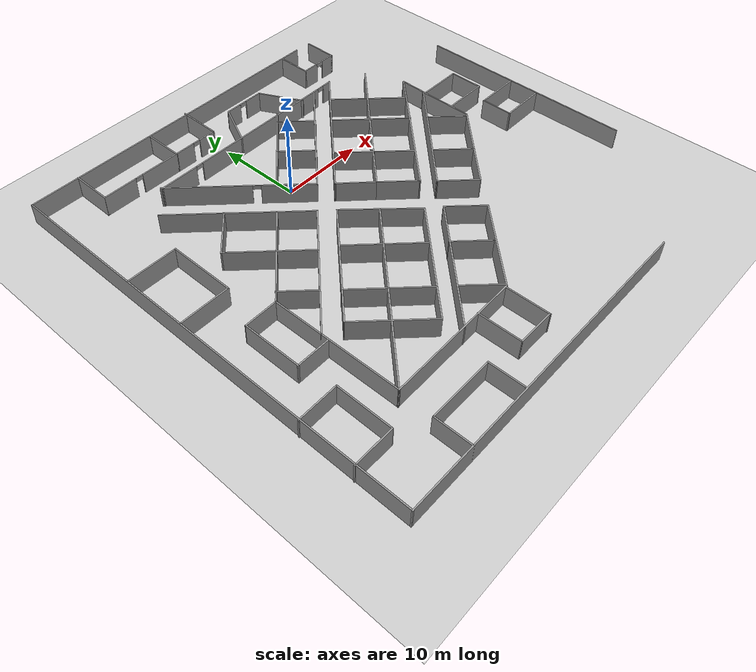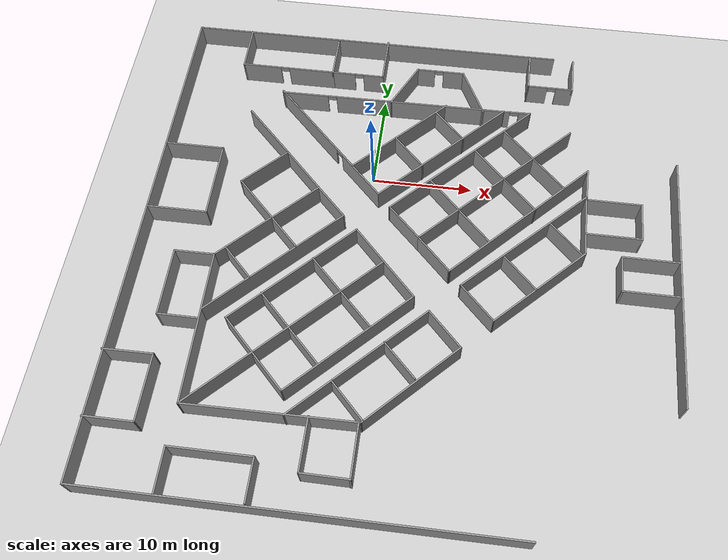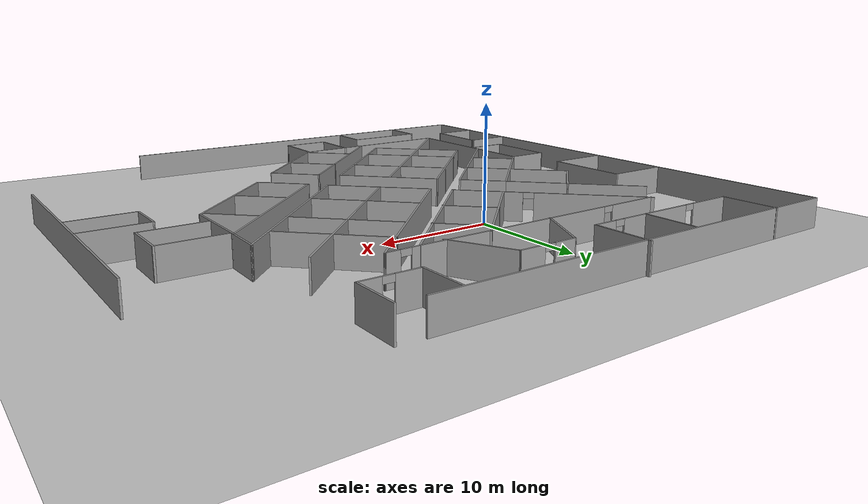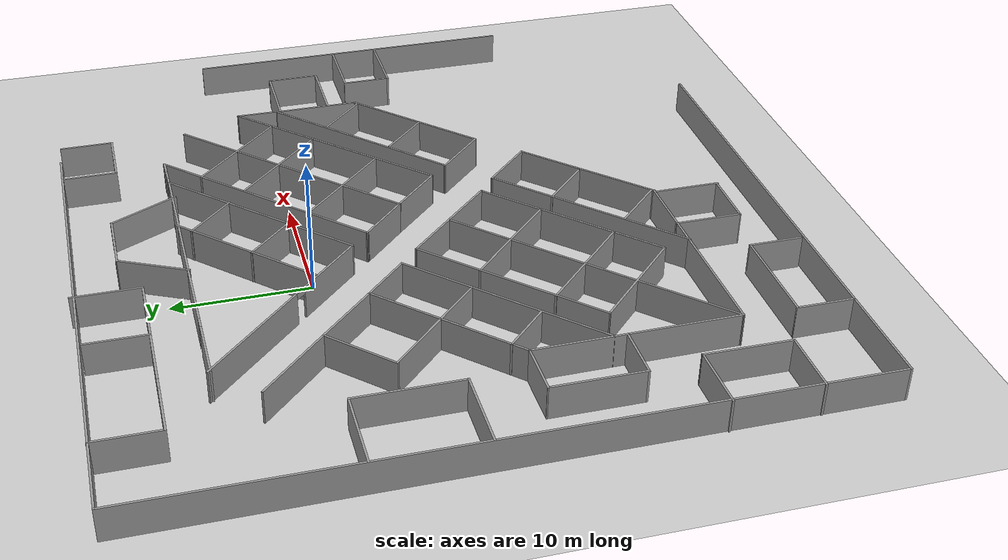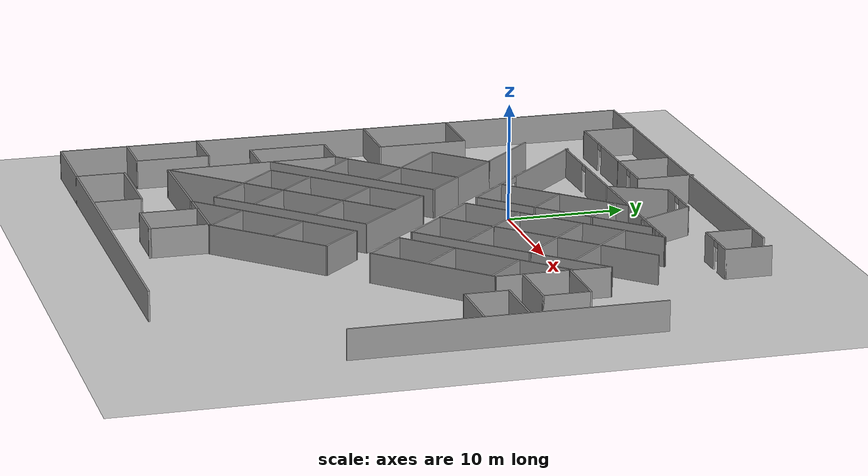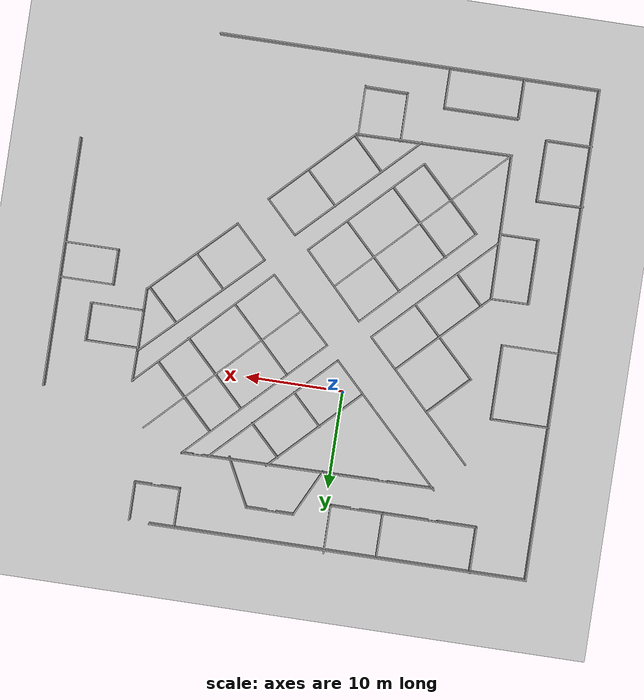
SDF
<sdf version="1.6">
 <world name="default">
  <model name="ground_plane">
   <static>1</static>
   <link name="link">
    <collision name="collision">
     <geometry><plane><normal>0 0 1</normal><size>100 100</size></plane></geometry>
     <surface>
      <contact><collide_bitmask>65535</collide_bitmask></contact>
      <friction><ode><mu>100</mu><mu2>50</mu2></ode></friction>
     </surface>
    </collision>
    <visual name="visual">
     <cast_shadows>0</cast_shadows>
     <geometry><plane><normal>0 0 1</normal><size>100 100</size></plane></geometry>
     <material>
      <script><uri>file://media/materials/scripts/gazebo.material</uri><name>Gazebo/Grey</name></script>
     </material>
    </visual>
   </link>
  </model>
  <model name="Level_1">
   <pose>4.42313 -8.87328 0 0 -0 0</pose>
   <link name="Wall_0">
    <collision name="Wall_0_Collision">
     <geometry><box><size>39 0.15 2.5</size></box></geometry>
     <pose>0 0 1.25 0 -0 0</pose>
    </collision>
    <visual name="Wall_0_Visual">
     <pose>0 0 1.25 0 -0 0</pose>
     <geometry><box><size>39 0.15 2.5</size></box></geometry>
     <material>
      <script><uri>file://media/materials/scripts/gazebo.material</uri><name>Gazebo/Grey</name></script>
      <ambient>1 1 1 1</ambient>
     </material>
     <meta><layer>0</layer></meta>
    </visual>
    <pose>-6.1866 -25.3136 0 0 -0 0</pose>
   </link>
   <link name="Wall_101">
    <collision name="Wall_101_Collision">
     <geometry><box><size>4.75 0.15 2.5</size></box></geometry>
     <pose>0 0 1.25 0 -0 0</pose>
    </collision>
    <visual name="Wall_101_Visual">
     <pose>0 0 1.25 0 -0 0</pose>
     <geometry><box><size>4.75 0.15 2.5</size></box></geometry>
     <material>
      <script><uri>file://media/materials/scripts/gazebo.material</uri><name>Gazebo/Grey</name></script>
      <ambient>1 1 1 1</ambient>
     </material>
     <meta><layer>0</layer></meta>
    </visual>
    <pose>7.03487 -4.82871 0 0 -0 2.35619</pose>
   </link>
   <link name="Wall_102">
    <collision name="Wall_102_Collision">
     <geometry><box><size>16.002 0.15 2.5</size></box></geometry>
     <pose>0 0 1.25 0 -0 0</pose>
    </collision>
    <visual name="Wall_102_Visual">
     <pose>0 0 1.25 0 -0 0</pose>
     <geometry><box><size>16.002 0.15 2.5</size></box></geometry>
     <material>
      <script><uri>file://media/materials/scripts/gazebo.material</uri><name>Gazebo/Grey</name></script>
      <ambient>1 1 1 1</ambient>
     </material>
     <meta><layer>0</layer></meta>
    </visual>
    <pose>11.1007 2.31307 0 0 -0 0.769627</pose>
   </link>
   <link name="Wall_103">
    <collision name="Wall_103_Collision">
     <geometry><box><size>6.5 0.15 2.5</size></box></geometry>
     <pose>0 0 1.25 0 -0 0</pose>
    </collision>
    <visual name="Wall_103_Visual">
     <pose>0 0 1.25 0 -0 0</pose>
     <geometry><box><size>6.5 0.15 2.5</size></box></geometry>
     <material>
      <script><uri>file://media/materials/scripts/gazebo.material</uri><name>Gazebo/Grey</name></script>
      <ambient>1 1 1 1</ambient>
     </material>
     <meta><layer>0</layer></meta>
    </visual>
    <pose>16.7929 4.65351 0 0 -0 -1.5708</pose>
   </link>
   <link name="Wall_104">
    <collision name="Wall_104_Collision">
     <geometry><box><size>11.5107 0.15 2.5</size></box></geometry>
     <pose>0 0 1.25 0 -0 0</pose>
    </collision>
    <visual name="Wall_104_Visual">
     <pose>0 0 1.25 0 -0 0</pose>
     <geometry><box><size>11.5107 0.15 2.5</size></box></geometry>
     <material>
      <script><uri>file://media/materials/scripts/gazebo.material</uri><name>Gazebo/Grey</name></script>
      <ambient>1 1 1 1</ambient>
     </material>
     <meta><layer>0</layer></meta>
    </visual>
    <pose>12.7271 -2.48827 0 0 -0 -2.36853</pose>
   </link>
   <link name="Wall_106">
    <collision name="Wall_106_Collision">
     <geometry><box><size>4.5 0.15 2.5</size></box></geometry>
     <pose>0 0 1.25 0 -0 0</pose>
    </collision>
    <visual name="Wall_106_Visual">
     <pose>0 0 1.25 0 -0 0</pose>
     <geometry><box><size>4.5 0.15 2.5</size></box></geometry>
     <material>
      <script><uri>file://media/materials/scripts/gazebo.material</uri><name>Gazebo/Grey</name></script>
      <ambient>1 1 1 1</ambient>
     </material>
     <meta><layer>0</layer></meta>
    </visual>
    <pose>10.7825 -1.28419 0 0 -0 -0.785398</pose>
   </link>
   <link name="Wall_108">
    <collision name="Wall_108_Collision">
     <geometry><box><size>4.5 0.15 2.5</size></box></geometry>
     <pose>0 0 1.25 0 -0 0</pose>
    </collision>
    <visual name="Wall_108_Visual">
     <pose>0 0 1.25 0 -0 0</pose>
     <geometry><box><size>4.5 0.15 2.5</size></box></geometry>
     <material>
      <script><uri>file://media/materials/scripts/gazebo.material</uri><name>Gazebo/Grey</name></script>
      <ambient>1 1 1 1</ambient>
     </material>
     <meta><layer>0</layer></meta>
    </visual>
    <pose>14.9391 2.87236 0 0 -0 -0.785398</pose>
   </link>
   <link name="Wall_11">
    <collision name="Wall_11_Collision">
     <geometry><box><size>25.5 0.15 2.5</size></box></geometry>
     <pose>0 0 1.25 0 -0 0</pose>
    </collision>
    <visual name="Wall_11_Visual">
     <pose>0 0 1.25 0 -0 0</pose>
     <geometry><box><size>25.5 0.15 2.5</size></box></geometry>
     <material>
      <script><uri>file://media/materials/scripts/gazebo.material</uri><name>Gazebo/Grey</name></script>
      <ambient>1 1 1 1</ambient>
     </material>
     <meta><layer>0</layer></meta>
    </visual>
    <pose>25.7176 -0.00926 0 0 -0 -1.5708</pose>
   </link>
   <link name="Wall_110">
    <collision name="Wall_110_Collision">
     <geometry><box><size>5.5 0.15 2.5</size></box></geometry>
     <pose>0 0 1.25 0 -0 0</pose>
    </collision>
    <visual name="Wall_110_Visual">
     <pose>0 0 1.25 0 -0 0</pose>
     <geometry><box><size>5.5 0.15 2.5</size></box></geometry>
     <material>
      <script><uri>file://media/materials/scripts/gazebo.material</uri><name>Gazebo/Grey</name></script>
      <ambient>1 1 1 1</ambient>
     </material>
     <meta><layer>0</layer></meta>
    </visual>
    <pose>22.9256 -2.04053 0 0 -0 3.14159</pose>
   </link>
   <link name="Wall_111">
    <collision name="Wall_111_Collision">
     <geometry><box><size>3.75 0.15 2.5</size></box></geometry>
     <pose>0 0 1.25 0 -0 0</pose>
    </collision>
    <visual name="Wall_111_Visual">
     <pose>0 0 1.25 0 -0 0</pose>
     <geometry><box><size>3.75 0.15 2.5</size></box></geometry>
     <material>
      <script><uri>file://media/materials/scripts/gazebo.material</uri><name>Gazebo/Grey</name></script>
      <ambient>1 1 1 1</ambient>
     </material>
     <meta><layer>0</layer></meta>
    </visual>
    <pose>20.2506 -0.240529 0 0 -0 1.5708</pose>
   </link>
   <link name="Wall_112">
    <collision name="Wall_112_Collision">
     <geometry><box><size>5.5 0.15 2.5</size></box></geometry>
     <pose>0 0 1.25 0 -0 0</pose>
    </collision>
    <visual name="Wall_112_Visual">
     <pose>0 0 1.25 0 -0 0</pose>
     <geometry><box><size>5.5 0.15 2.5</size></box></geometry>
     <material>
      <script><uri>file://media/materials/scripts/gazebo.material</uri><name>Gazebo/Grey</name></script>
      <ambient>1 1 1 1</ambient>
     </material>
     <meta><layer>0</layer></meta>
    </visual>
    <pose>22.9256 1.55947 0 0 -0 0</pose>
   </link>
   <link name="Wall_114">
    <collision name="Wall_114_Collision">
     <geometry><box><size>5.5 0.15 2.5</size></box></geometry>
     <pose>0 0 1.25 0 -0 0</pose>
    </collision>
    <visual name="Wall_114_Visual">
     <pose>0 0 1.25 0 -0 0</pose>
     <geometry><box><size>5.5 0.15 2.5</size></box></geometry>
     <material>
      <script><uri>file://media/materials/scripts/gazebo.material</uri><name>Gazebo/Grey</name></script>
      <ambient>1 1 1 1</ambient>
     </material>
     <meta><layer>0</layer></meta>
    </visual>
    <pose>19.4933 3.69811 0 0 -0 0</pose>
   </link>
   <link name="Wall_115">
    <collision name="Wall_115_Collision">
     <geometry><box><size>4 0.15 2.5</size></box></geometry>
     <pose>0 0 1.25 0 -0 0</pose>
    </collision>
    <visual name="Wall_115_Visual">
     <pose>0 0 1.25 0 -0 0</pose>
     <geometry><box><size>4 0.15 2.5</size></box></geometry>
     <material>
      <script><uri>file://media/materials/scripts/gazebo.material</uri><name>Gazebo/Grey</name></script>
      <ambient>1 1 1 1</ambient>
     </material>
     <meta><layer>0</layer></meta>
    </visual>
    <pose>22.1683 5.62311 0 0 -0 1.5708</pose>
   </link>
   <link name="Wall_116">
    <collision name="Wall_116_Collision">
     <geometry><box><size>5.5 0.15 2.5</size></box></geometry>
     <pose>0 0 1.25 0 -0 0</pose>
    </collision>
    <visual name="Wall_116_Visual">
     <pose>0 0 1.25 0 -0 0</pose>
     <geometry><box><size>5.5 0.15 2.5</size></box></geometry>
     <material>
      <script><uri>file://media/materials/scripts/gazebo.material</uri><name>Gazebo/Grey</name></script>
      <ambient>1 1 1 1</ambient>
     </material>
     <meta><layer>0</layer></meta>
    </visual>
    <pose>19.4933 7.54811 0 0 -0 3.14159</pose>
   </link>
   <link name="Wall_118">
    <collision name="Wall_118_Collision">
     <geometry><box><size>5.39027 0.15 2.5</size></box></geometry>
     <pose>0 0 1.25 0 -0 0</pose>
    </collision>
    <visual name="Wall_118_Visual">
     <pose>0 0 1.25 0 -0 0</pose>
     <geometry><box><size>5.39027 0.15 2.5</size></box></geometry>
     <material>
      <script><uri>file://media/materials/scripts/gazebo.material</uri><name>Gazebo/Grey</name></script>
      <ambient>1 1 1 1</ambient>
     </material>
     <meta><layer>0</layer></meta>
    </visual>
    <pose>-2.48405 19.5667 0 0 -0 1.11332</pose>
   </link>
   <link name="Wall_119">
    <pose>1.09822 21.9175 0 0 -0 0</pose>
    <visual name="Wall_119_Visual_0">
     <pose>-1.54856 0 1.25 0 -0 0</pose>
     <geometry><box><size>1.90287 0.15 2.5</size></box></geometry>
     <material>
      <script><uri>file://media/materials/scripts/gazebo.material</uri><name>Gazebo/Grey</name></script>
      <ambient>1 1 1 1</ambient>
     </material>
     <meta><layer>0</layer></meta>
    </visual>
    <collision name="Wall_119_Collision_0">
     <geometry><box><size>1.90287 0.15 2.5</size></box></geometry>
     <pose>-1.54856 0 1.25 0 -0 0</pose>
    </collision>
    <visual name="Wall_119_Visual_1">
     <pose>1.40144 0 1.25 0 -0 0</pose>
     <geometry><box><size>2.19713 0.15 2.5</size></box></geometry>
     <material>
      <script><uri>file://media/materials/scripts/gazebo.material</uri><name>Gazebo/Grey</name></script>
      <ambient>1 1 1 1</ambient>
     </material>
     <meta><layer>0</layer></meta>
    </visual>
    <collision name="Wall_119_Collision_1">
     <geometry><box><size>2.19713 0.15 2.5</size></box></geometry>
     <pose>1.40144 0 1.25 0 -0 0</pose>
    </collision>
    <visual name="Wall_119_Visual_2">
     <pose>-0.147126 0 2.25 0 -0 0</pose>
     <geometry><box><size>0.9 0.15 0.5</size></box></geometry>
     <material>
      <script><uri>file://media/materials/scripts/gazebo.material</uri><name>Gazebo/Grey</name></script>
      <ambient>1 1 1 1</ambient>
     </material>
     <meta><layer>0</layer></meta>
    </visual>
    <collision name="Wall_119_Collision_2">
     <geometry><box><size>0.9 0.15 0.5</size></box></geometry>
     <pose>-0.147126 0 2.25 0 -0 0</pose>
    </collision>
   </link>
   <link name="Wall_120">
    <collision name="Wall_120_Collision">
     <geometry><box><size>5.51815 0.15 2.5</size></box></geometry>
     <pose>0 0 1.25 0 -0 0</pose>
    </collision>
    <visual name="Wall_120_Visual">
     <pose>0 0 1.25 0 -0 0</pose>
     <geometry><box><size>5.51815 0.15 2.5</size></box></geometry>
     <material>
      <script><uri>file://media/materials/scripts/gazebo.material</uri><name>Gazebo/Grey</name></script>
      <ambient>1 1 1 1</ambient>
     </material>
     <meta><layer>0</layer></meta>
    </visual>
    <pose>4.75085 19.5306 0 0 -0 -1.09575</pose>
   </link>
   <link name="Wall_122">
    <collision name="Wall_122_Collision">
     <geometry><box><size>4 0.15 2.5</size></box></geometry>
     <pose>0 0 1.25 0 -0 0</pose>
    </collision>
    <visual name="Wall_122_Visual">
     <pose>0 0 1.25 0 -0 0</pose>
     <geometry><box><size>4 0.15 2.5</size></box></geometry>
     <material>
      <script><uri>file://media/materials/scripts/gazebo.material</uri><name>Gazebo/Grey</name></script>
      <ambient>1 1 1 1</ambient>
     </material>
     <meta><layer>0</layer></meta>
    </visual>
    <pose>10.4775 22.9915 0 0 -0 -1.5708</pose>
   </link>
   <link name="Wall_123">
    <pose>12.7775 21.0665 0 0 -0 0</pose>
    <visual name="Wall_123_Visual_0">
     <pose>-1.33768 0 1.25 0 -0 0</pose>
     <geometry><box><size>2.07464 0.15 2.5</size></box></geometry>
     <material>
      <script><uri>file://media/materials/scripts/gazebo.material</uri><name>Gazebo/Grey</name></script>
      <ambient>1 1 1 1</ambient>
     </material>
     <meta><layer>0</layer></meta>
    </visual>
    <collision name="Wall_123_Collision_0">
     <geometry><box><size>2.07464 0.15 2.5</size></box></geometry>
     <pose>-1.33768 0 1.25 0 -0 0</pose>
    </collision>
    <visual name="Wall_123_Visual_1">
     <pose>1.48732 0 1.25 0 -0 0</pose>
     <geometry><box><size>1.77536 0.15 2.5</size></box></geometry>
     <material>
      <script><uri>file://media/materials/scripts/gazebo.material</uri><name>Gazebo/Grey</name></script>
      <ambient>1 1 1 1</ambient>
     </material>
     <meta><layer>0</layer></meta>
    </visual>
    <collision name="Wall_123_Collision_1">
     <geometry><box><size>1.77536 0.15 2.5</size></box></geometry>
     <pose>1.48732 0 1.25 0 -0 0</pose>
    </collision>
    <visual name="Wall_123_Visual_2">
     <pose>0.149637 0 2.25 0 -0 0</pose>
     <geometry><box><size>0.9 0.15 0.5</size></box></geometry>
     <material>
      <script><uri>file://media/materials/scripts/gazebo.material</uri><name>Gazebo/Grey</name></script>
      <ambient>1 1 1 1</ambient>
     </material>
     <meta><layer>0</layer></meta>
    </visual>
    <collision name="Wall_123_Collision_2">
     <geometry><box><size>0.9 0.15 0.5</size></box></geometry>
     <pose>0.149637 0 2.25 0 -0 0</pose>
    </collision>
   </link>
   <link name="Wall_124">
    <collision name="Wall_124_Collision">
     <geometry><box><size>4 0.15 2.5</size></box></geometry>
     <pose>0 0 1.25 0 -0 0</pose>
    </collision>
    <visual name="Wall_124_Visual">
     <pose>0 0 1.25 0 -0 0</pose>
     <geometry><box><size>4 0.15 2.5</size></box></geometry>
     <material>
      <script><uri>file://media/materials/scripts/gazebo.material</uri><name>Gazebo/Grey</name></script>
      <ambient>1 1 1 1</ambient>
     </material>
     <meta><layer>0</layer></meta>
    </visual>
    <pose>15.0775 22.9915 0 0 -0 1.5708</pose>
   </link>
   <link name="Wall_126">
    <collision name="Wall_126_Collision">
     <geometry><box><size>4.75 0.15 2.5</size></box></geometry>
     <pose>0 0 1.25 0 -0 0</pose>
    </collision>
    <visual name="Wall_126_Visual">
     <pose>0 0 1.25 0 -0 0</pose>
     <geometry><box><size>4.75 0.15 2.5</size></box></geometry>
     <material>
      <script><uri>file://media/materials/scripts/gazebo.material</uri><name>Gazebo/Grey</name></script>
      <ambient>1 1 1 1</ambient>
     </material>
     <meta><layer>0</layer></meta>
    </visual>
    <pose>-19.8825 22.7636 0 0 -0 -1.5708</pose>
   </link>
   <link name="Wall_127">
    <pose>-15.0825 20.4636 0 0 -0 0</pose>
    <visual name="Wall_127_Visual_0">
     <pose>-2.83636 0 1.25 0 -0 0</pose>
     <geometry><box><size>4.07728 0.15 2.5</size></box></geometry>
     <material>
      <script><uri>file://media/materials/scripts/gazebo.material</uri><name>Gazebo/Grey</name></script>
      <ambient>1 1 1 1</ambient>
     </material>
     <meta><layer>0</layer></meta>
    </visual>
    <collision name="Wall_127_Collision_0">
     <geometry><box><size>4.07728 0.15 2.5</size></box></geometry>
     <pose>-2.83636 0 1.25 0 -0 0</pose>
    </collision>
    <visual name="Wall_127_Visual_1">
     <pose>2.48864 0 1.25 0 -0 0</pose>
     <geometry><box><size>4.77272 0.15 2.5</size></box></geometry>
     <material>
      <script><uri>file://media/materials/scripts/gazebo.material</uri><name>Gazebo/Grey</name></script>
      <ambient>1 1 1 1</ambient>
     </material>
     <meta><layer>0</layer></meta>
    </visual>
    <collision name="Wall_127_Collision_1">
     <geometry><box><size>4.77272 0.15 2.5</size></box></geometry>
     <pose>2.48864 0 1.25 0 -0 0</pose>
    </collision>
    <visual name="Wall_127_Visual_2">
     <pose>-0.347718 0 2.25 0 -0 0</pose>
     <geometry><box><size>0.9 0.15 0.5</size></box></geometry>
     <material>
      <script><uri>file://media/materials/scripts/gazebo.material</uri><name>Gazebo/Grey</name></script>
      <ambient>1 1 1 1</ambient>
     </material>
     <meta><layer>0</layer></meta>
    </visual>
    <collision name="Wall_127_Collision_2">
     <geometry><box><size>0.9 0.15 0.5</size></box></geometry>
     <pose>-0.347718 0 2.25 0 -0 0</pose>
    </collision>
   </link>
   <link name="Wall_128">
    <collision name="Wall_128_Collision">
     <geometry><box><size>4.5 0.15 2.5</size></box></geometry>
     <pose>0 0 1.25 0 -0 0</pose>
    </collision>
    <visual name="Wall_128_Visual">
     <pose>0 0 1.25 0 -0 0</pose>
     <geometry><box><size>4.5 0.15 2.5</size></box></geometry>
     <material>
      <script><uri>file://media/materials/scripts/gazebo.material</uri><name>Gazebo/Grey</name></script>
      <ambient>1 1 1 1</ambient>
     </material>
     <meta><layer>0</layer></meta>
    </visual>
    <pose>-10.2825 22.6386 0 0 -0 1.5708</pose>
   </link>
   <link name="Wall_13">
    <collision name="Wall_13_Collision">
     <geometry><box><size>4.75 0.15 2.5</size></box></geometry>
     <pose>0 0 1.25 0 -0 0</pose>
    </collision>
    <visual name="Wall_13_Visual">
     <pose>0 0 1.25 0 -0 0</pose>
     <geometry><box><size>4.75 0.15 2.5</size></box></geometry>
     <material>
      <script><uri>file://media/materials/scripts/gazebo.material</uri><name>Gazebo/Grey</name></script>
      <ambient>1 1 1 1</ambient>
     </material>
     <meta><layer>0</layer></meta>
    </visual>
    <pose>-23.394 -19.4874 0 0 -0 0</pose>
   </link>
   <link name="Wall_130">
    <pose>-7.60749 20.4636 0 0 -0 0</pose>
    <visual name="Wall_130_Visual_0">
     <pose>-1.51233 0 1.25 0 -0 0</pose>
     <geometry><box><size>2.47533 0.15 2.5</size></box></geometry>
     <material>
      <script><uri>file://media/materials/scripts/gazebo.material</uri><name>Gazebo/Grey</name></script>
      <ambient>1 1 1 1</ambient>
     </material>
     <meta><layer>0</layer></meta>
    </visual>
    <collision name="Wall_130_Collision_0">
     <geometry><box><size>2.47533 0.15 2.5</size></box></geometry>
     <pose>-1.51233 0 1.25 0 -0 0</pose>
    </collision>
    <visual name="Wall_130_Visual_1">
     <pose>1.68767 0 1.25 0 -0 0</pose>
     <geometry><box><size>2.12467 0.15 2.5</size></box></geometry>
     <material>
      <script><uri>file://media/materials/scripts/gazebo.material</uri><name>Gazebo/Grey</name></script>
      <ambient>1 1 1 1</ambient>
     </material>
     <meta><layer>0</layer></meta>
    </visual>
    <collision name="Wall_130_Collision_1">
     <geometry><box><size>2.12467 0.15 2.5</size></box></geometry>
     <pose>1.68767 0 1.25 0 -0 0</pose>
    </collision>
    <visual name="Wall_130_Visual_2">
     <pose>0.175332 0 2.25 0 -0 0</pose>
     <geometry><box><size>0.9 0.15 0.5</size></box></geometry>
     <material>
      <script><uri>file://media/materials/scripts/gazebo.material</uri><name>Gazebo/Grey</name></script>
      <ambient>1 1 1 1</ambient>
     </material>
     <meta><layer>0</layer></meta>
    </visual>
    <collision name="Wall_130_Collision_2">
     <geometry><box><size>0.9 0.15 0.5</size></box></geometry>
     <pose>0.175332 0 2.25 0 -0 0</pose>
    </collision>
   </link>
   <link name="Wall_131">
    <collision name="Wall_131_Collision">
     <geometry><box><size>5 0.15 2.5</size></box></geometry>
     <pose>0 0 1.25 0 -0 0</pose>
    </collision>
    <visual name="Wall_131_Visual">
     <pose>0 0 1.25 0 -0 0</pose>
     <geometry><box><size>5 0.15 2.5</size></box></geometry>
     <material>
      <script><uri>file://media/materials/scripts/gazebo.material</uri><name>Gazebo/Grey</name></script>
      <ambient>1 1 1 1</ambient>
     </material>
     <meta><layer>0</layer></meta>
    </visual>
    <pose>-4.93249 22.8886 0 0 -0 1.5708</pose>
   </link>
   <link name="Wall_133">
    <pose>9.44685 17.3898 0 0 -0 0.021977</pose>
    <visual name="Wall_133_Visual_0">
     <pose>-1.07074 0 1.25 0 -0 0</pose>
     <geometry><box><size>0.736662 0.15 2.5</size></box></geometry>
     <material>
      <script><uri>file://media/materials/scripts/gazebo.material</uri><name>Gazebo/Grey</name></script>
      <ambient>1 1 1 1</ambient>
     </material>
     <meta><layer>0</layer></meta>
    </visual>
    <collision name="Wall_133_Collision_0">
     <geometry><box><size>0.736662 0.15 2.5</size></box></geometry>
     <pose>-1.07074 0 1.25 0 -0 0</pose>
    </collision>
    <visual name="Wall_133_Visual_1">
     <pose>0.818331 0 1.25 0 -0 0</pose>
     <geometry><box><size>1.24147 0.15 2.5</size></box></geometry>
     <material>
      <script><uri>file://media/materials/scripts/gazebo.material</uri><name>Gazebo/Grey</name></script>
      <ambient>1 1 1 1</ambient>
     </material>
     <meta><layer>0</layer></meta>
    </visual>
    <collision name="Wall_133_Collision_1">
     <geometry><box><size>1.24147 0.15 2.5</size></box></geometry>
     <pose>0.818331 0 1.25 0 -0 0</pose>
    </collision>
    <visual name="Wall_133_Visual_2">
     <pose>-0.252406 0 2.25 0 -0 0</pose>
     <geometry><box><size>0.9 0.15 0.5</size></box></geometry>
     <material>
      <script><uri>file://media/materials/scripts/gazebo.material</uri><name>Gazebo/Grey</name></script>
      <ambient>1 1 1 1</ambient>
     </material>
     <meta><layer>0</layer></meta>
    </visual>
    <collision name="Wall_133_Collision_2">
     <geometry><box><size>0.9 0.15 0.5</size></box></geometry>
     <pose>-0.252406 0 2.25 0 -0 0</pose>
    </collision>
   </link>
   <link name="Wall_135">
    <collision name="Wall_135_Collision">
     <geometry><box><size>3.52284 0.15 2.5</size></box></geometry>
     <pose>0 0 1.25 0 -0 0</pose>
    </collision>
    <visual name="Wall_135_Visual">
     <pose>0 0 1.25 0 -0 0</pose>
     <geometry><box><size>3.52284 0.15 2.5</size></box></geometry>
     <material>
      <script><uri>file://media/materials/scripts/gazebo.material</uri><name>Gazebo/Grey</name></script>
      <ambient>1 1 1 1</ambient>
     </material>
     <meta><layer>0</layer></meta>
    </visual>
    <pose>16.8454 9.23414 0 0 -0 -1.58689</pose>
   </link>
   <link name="Wall_16">
    <collision name="Wall_16_Collision">
     <geometry><box><size>6.4039 0.15 2.5</size></box></geometry>
     <pose>0 0 1.25 0 -0 0</pose>
    </collision>
    <visual name="Wall_16_Visual">
     <pose>0 0 1.25 0 -0 0</pose>
     <geometry><box><size>6.4039 0.15 2.5</size></box></geometry>
     <material>
      <script><uri>file://media/materials/scripts/gazebo.material</uri><name>Gazebo/Grey</name></script>
      <ambient>1 1 1 1</ambient>
     </material>
     <meta><layer>0</layer></meta>
    </visual>
    <pose>-21.0744 -16.3606 0 0 -0 1.56453</pose>
   </link>
   <link name="Wall_17">
    <collision name="Wall_17_Collision">
     <geometry><box><size>4.8124 0.15 2.5</size></box></geometry>
     <pose>0 0 1.25 0 -0 0</pose>
    </collision>
    <visual name="Wall_17_Visual">
     <pose>0 0 1.25 0 -0 0</pose>
     <geometry><box><size>4.8124 0.15 2.5</size></box></geometry>
     <material>
      <script><uri>file://media/materials/scripts/gazebo.material</uri><name>Gazebo/Grey</name></script>
      <ambient>1 1 1 1</ambient>
     </material>
     <meta><layer>0</layer></meta>
    </visual>
    <pose>-23.3858 -13.2564 0 0 -0 -3.13184</pose>
   </link>
   <link name="Wall_19">
    <collision name="Wall_19_Collision">
     <geometry><box><size>16.0443 0.15 2.5</size></box></geometry>
     <pose>0 0 1.25 0 -0 0</pose>
    </collision>
    <visual name="Wall_19_Visual">
     <pose>0 0 1.25 0 -0 0</pose>
     <geometry><box><size>16.0443 0.15 2.5</size></box></geometry>
     <material>
      <script><uri>file://media/materials/scripts/gazebo.material</uri><name>Gazebo/Grey</name></script>
      <ambient>1 1 1 1</ambient>
     </material>
     <meta><layer>0</layer></meta>
    </visual>
    <pose>-9.84438 -17.3407 0 0 -0 0.010778</pose>
   </link>
   <link name="Wall_2">
    <collision name="Wall_2_Collision">
     <geometry><box><size>4.25 0.15 2.5</size></box></geometry>
     <pose>0 0 1.25 0 -0 0</pose>
    </collision>
    <visual name="Wall_2_Visual">
     <pose>0 0 1.25 0 -0 0</pose>
     <geometry><box><size>4.25 0.15 2.5</size></box></geometry>
     <material>
      <script><uri>file://media/materials/scripts/gazebo.material</uri><name>Gazebo/Grey</name></script>
      <ambient>1 1 1 1</ambient>
     </material>
     <meta><layer>0</layer></meta>
    </visual>
    <pose>-17.939 -23.2636 0 0 -0 1.5708</pose>
   </link>
   <link name="Wall_20">
    <collision name="Wall_20_Collision">
     <geometry><box><size>11.25 0.15 2.5</size></box></geometry>
     <pose>0 0 1.25 0 -0 0</pose>
    </collision>
    <visual name="Wall_20_Visual">
     <pose>0 0 1.25 0 -0 0</pose>
     <geometry><box><size>11.25 0.15 2.5</size></box></geometry>
     <material>
      <script><uri>file://media/materials/scripts/gazebo.material</uri><name>Gazebo/Grey</name></script>
      <ambient>1 1 1 1</ambient>
     </material>
     <meta><layer>0</layer></meta>
    </visual>
    <pose>2.02676 -13.3306 0 0 -0 0.785398</pose>
   </link>
   <link name="Wall_21">
    <collision name="Wall_21_Collision">
     <geometry><box><size>4.70633 0.15 2.5</size></box></geometry>
     <pose>0 0 1.25 0 -0 0</pose>
    </collision>
    <visual name="Wall_21_Visual">
     <pose>0 0 1.25 0 -0 0</pose>
     <geometry><box><size>4.70633 0.15 2.5</size></box></geometry>
     <material>
      <script><uri>file://media/materials/scripts/gazebo.material</uri><name>Gazebo/Grey</name></script>
      <ambient>1 1 1 1</ambient>
     </material>
     <meta><layer>0</layer></meta>
    </visual>
    <pose>4.35354 -7.78211 0 0 -0 2.348</pose>
   </link>
   <link name="Wall_22">
    <collision name="Wall_22_Collision">
     <geometry><box><size>16.0969 0.15 2.5</size></box></geometry>
     <pose>0 0 1.25 0 -0 0</pose>
    </collision>
    <visual name="Wall_22_Visual">
     <pose>0 0 1.25 0 -0 0</pose>
     <geometry><box><size>16.0969 0.15 2.5</size></box></geometry>
     <material>
      <script><uri>file://media/materials/scripts/gazebo.material</uri><name>Gazebo/Grey</name></script>
      <ambient>1 1 1 1</ambient>
     </material>
     <meta><layer>0</layer></meta>
    </visual>
    <pose>-2.91193 -11.7662 0 0 -0 -2.36149</pose>
   </link>
   <link name="Wall_24">
    <collision name="Wall_24_Collision">
     <geometry><box><size>9 0.15 2.5</size></box></geometry>
     <pose>0 0 1.25 0 -0 0</pose>
    </collision>
    <visual name="Wall_24_Visual">
     <pose>0 0 1.25 0 -0 0</pose>
     <geometry><box><size>9 0.15 2.5</size></box></geometry>
     <material>
      <script><uri>file://media/materials/scripts/gazebo.material</uri><name>Gazebo/Grey</name></script>
      <ambient>1 1 1 1</ambient>
     </material>
     <meta><layer>0</layer></meta>
    </visual>
    <pose>-12.3218 -12.1261 0 0 -0 2.35619</pose>
   </link>
   <link name="Wall_25">
    <collision name="Wall_25_Collision">
     <geometry><box><size>14.9952 0.15 2.5</size></box></geometry>
     <pose>0 0 1.25 0 -0 0</pose>
    </collision>
    <visual name="Wall_25_Visual">
     <pose>0 0 1.25 0 -0 0</pose>
     <geometry><box><size>14.9952 0.15 2.5</size></box></geometry>
     <material>
      <script><uri>file://media/materials/scripts/gazebo.material</uri><name>Gazebo/Grey</name></script>
      <ambient>1 1 1 1</ambient>
     </material>
     <meta><layer>0</layer></meta>
    </visual>
    <pose>-10.2245 -3.72644 0 0 -0 0.789636</pose>
   </link>
   <link name="Wall_26">
    <collision name="Wall_26_Collision">
     <geometry><box><size>9.09192 0.15 2.5</size></box></geometry>
     <pose>0 0 1.25 0 -0 0</pose>
    </collision>
    <visual name="Wall_26_Visual">
     <pose>0 0 1.25 0 -0 0</pose>
     <geometry><box><size>9.09192 0.15 2.5</size></box></geometry>
     <material>
      <script><uri>file://media/materials/scripts/gazebo.material</uri><name>Gazebo/Grey</name></script>
      <ambient>1 1 1 1</ambient>
     </material>
     <meta><layer>0</layer></meta>
    </visual>
    <pose>-1.88972 -1.66923 0 0 -0 -0.802016</pose>
   </link>
   <link name="Wall_27">
    <collision name="Wall_27_Collision">
     <geometry><box><size>14.75 0.15 2.5</size></box></geometry>
     <pose>0 0 1.25 0 -0 0</pose>
    </collision>
    <visual name="Wall_27_Visual">
     <pose>0 0 1.25 0 -0 0</pose>
     <geometry><box><size>14.75 0.15 2.5</size></box></geometry>
     <material>
      <script><uri>file://media/materials/scripts/gazebo.material</uri><name>Gazebo/Grey</name></script>
      <ambient>1 1 1 1</ambient>
     </material>
     <meta><layer>0</layer></meta>
    </visual>
    <pose>-3.94634 -10.0479 0 0 -0 -2.35619</pose>
   </link>
   <link name="Wall_29">
    <collision name="Wall_29_Collision">
     <geometry><box><size>14.8537 0.15 2.5</size></box></geometry>
     <pose>0 0 1.25 0 -0 0</pose>
    </collision>
    <visual name="Wall_29_Visual">
     <pose>0 0 1.25 0 -0 0</pose>
     <geometry><box><size>14.8537 0.15 2.5</size></box></geometry>
     <material>
      <script><uri>file://media/materials/scripts/gazebo.material</uri><name>Gazebo/Grey</name></script>
      <ambient>1 1 1 1</ambient>
     </material>
     <meta><layer>0</layer></meta>
    </visual>
    <pose>-17.8589 -10.0748 0 0 -0 1.58002</pose>
   </link>
   <link name="Wall_30">
    <collision name="Wall_30_Collision">
     <geometry><box><size>12.25 0.15 2.5</size></box></geometry>
     <pose>0 0 1.25 0 -0 0</pose>
    </collision>
    <visual name="Wall_30_Visual">
     <pose>0 0 1.25 0 -0 0</pose>
     <geometry><box><size>12.25 0.15 2.5</size></box></geometry>
     <material>
      <script><uri>file://media/materials/scripts/gazebo.material</uri><name>Gazebo/Grey</name></script>
      <ambient>1 1 1 1</ambient>
     </material>
     <meta><layer>0</layer></meta>
    </visual>
    <pose>-13.6487 1.55476 0 0 -0 0.785398</pose>
   </link>
   <link name="Wall_31">
    <collision name="Wall_31_Collision">
     <geometry><box><size>4.25 0.15 2.5</size></box></geometry>
     <pose>0 0 1.25 0 -0 0</pose>
    </collision>
    <visual name="Wall_31_Visual">
     <pose>0 0 1.25 0 -0 0</pose>
     <geometry><box><size>4.25 0.15 2.5</size></box></geometry>
     <material>
      <script><uri>file://media/materials/scripts/gazebo.material</uri><name>Gazebo/Grey</name></script>
      <ambient>1 1 1 1</ambient>
     </material>
     <meta><layer>0</layer></meta>
    </visual>
    <pose>-7.9211 4.38319 0 0 -0 -0.785398</pose>
   </link>
   <link name="Wall_33">
    <collision name="Wall_33_Collision">
     <geometry><box><size>16.25 0.15 2.5</size></box></geometry>
     <pose>0 0 1.25 0 -0 0</pose>
    </collision>
    <visual name="Wall_33_Visual">
     <pose>0 0 1.25 0 -0 0</pose>
     <geometry><box><size>16.25 0.15 2.5</size></box></geometry>
     <material>
      <script><uri>file://media/materials/scripts/gazebo.material</uri><name>Gazebo/Grey</name></script>
      <ambient>1 1 1 1</ambient>
     </material>
     <meta><layer>0</layer></meta>
    </visual>
    <pose>-12.1637 -2.75859 0 0 -0 -2.35619</pose>
   </link>
   <link name="Wall_35">
    <collision name="Wall_35_Collision">
     <geometry><box><size>22.5 0.15 2.5</size></box></geometry>
     <pose>0 0 1.25 0 -0 0</pose>
    </collision>
    <visual name="Wall_35_Visual">
     <pose>0 0 1.25 0 -0 0</pose>
     <geometry><box><size>22.5 0.15 2.5</size></box></geometry>
     <material>
      <script><uri>file://media/materials/scripts/gazebo.material</uri><name>Gazebo/Grey</name></script>
      <ambient>1 1 1 1</ambient>
     </material>
     <meta><layer>0</layer></meta>
    </visual>
    <pose>-9.90046 -9.53573 0 0 -0 0.785398</pose>
   </link>
   <link name="Wall_37">
    <collision name="Wall_37_Collision">
     <geometry><box><size>4.25 0.15 2.5</size></box></geometry>
     <pose>0 0 1.25 0 -0 0</pose>
    </collision>
    <visual name="Wall_37_Visual">
     <pose>0 0 1.25 0 -0 0</pose>
     <geometry><box><size>4.25 0.15 2.5</size></box></geometry>
     <material>
      <script><uri>file://media/materials/scripts/gazebo.material</uri><name>Gazebo/Grey</name></script>
      <ambient>1 1 1 1</ambient>
     </material>
     <meta><layer>0</layer></meta>
    </visual>
    <pose>-15.5996 -3.27281 0 0 -0 -0.785398</pose>
   </link>
   <link name="Wall_39">
    <collision name="Wall_39_Collision">
     <geometry><box><size>4.25 0.15 2.5</size></box></geometry>
     <pose>0 0 1.25 0 -0 0</pose>
    </collision>
    <visual name="Wall_39_Visual">
     <pose>0 0 1.25 0 -0 0</pose>
     <geometry><box><size>4.25 0.15 2.5</size></box></geometry>
     <material>
      <script><uri>file://media/materials/scripts/gazebo.material</uri><name>Gazebo/Grey</name></script>
      <ambient>1 1 1 1</ambient>
     </material>
     <meta><layer>0</layer></meta>
    </visual>
    <pose>-11.8668 0.459992 0 0 -0 -0.785398</pose>
   </link>
   <link name="Wall_41">
    <collision name="Wall_41_Collision">
     <geometry><box><size>9 0.15 2.5</size></box></geometry>
     <pose>0 0 1.25 0 -0 0</pose>
    </collision>
    <visual name="Wall_41_Visual">
     <pose>0 0 1.25 0 -0 0</pose>
     <geometry><box><size>9 0.15 2.5</size></box></geometry>
     <material>
      <script><uri>file://media/materials/scripts/gazebo.material</uri><name>Gazebo/Grey</name></script>
      <ambient>1 1 1 1</ambient>
     </material>
     <meta><layer>0</layer></meta>
    </visual>
    <pose>-9.59981 -9.30713 0 0 -0 -0.785398</pose>
   </link>
   <link name="Wall_43">
    <collision name="Wall_43_Collision">
     <geometry><box><size>9 0.15 2.5</size></box></geometry>
     <pose>0 0 1.25 0 -0 0</pose>
    </collision>
    <visual name="Wall_43_Visual">
     <pose>0 0 1.25 0 -0 0</pose>
     <geometry><box><size>9 0.15 2.5</size></box></geometry>
     <material>
      <script><uri>file://media/materials/scripts/gazebo.material</uri><name>Gazebo/Grey</name></script>
      <ambient>1 1 1 1</ambient>
     </material>
     <meta><layer>0</layer></meta>
    </visual>
    <pose>-5.48681 -5.19413 0 0 -0 -0.785398</pose>
   </link>
   <link name="Wall_45">
    <collision name="Wall_45_Collision">
     <geometry><box><size>4.5 0.15 2.5</size></box></geometry>
     <pose>0 0 1.25 0 -0 0</pose>
    </collision>
    <visual name="Wall_45_Visual">
     <pose>0 0 1.25 0 -0 0</pose>
     <geometry><box><size>4.5 0.15 2.5</size></box></geometry>
     <material>
      <script><uri>file://media/materials/scripts/gazebo.material</uri><name>Gazebo/Grey</name></script>
      <ambient>1 1 1 1</ambient>
     </material>
     <meta><layer>0</layer></meta>
    </visual>
    <pose>0.66431 -11.2416 0 0 -0 -0.785398</pose>
   </link>
   <link name="Wall_47">
    <collision name="Wall_47_Collision">
     <geometry><box><size>4.72203 0.15 2.5</size></box></geometry>
     <pose>0 0 1.25 0 -0 0</pose>
    </collision>
    <visual name="Wall_47_Visual">
     <pose>0 0 1.25 0 -0 0</pose>
     <geometry><box><size>4.72203 0.15 2.5</size></box></geometry>
     <material>
      <script><uri>file://media/materials/scripts/gazebo.material</uri><name>Gazebo/Grey</name></script>
      <ambient>1 1 1 1</ambient>
     </material>
     <meta><layer>0</layer></meta>
    </visual>
    <pose>-3.38858 -15.4661 0 0 -0 -0.793528</pose>
   </link>
   <link name="Wall_49">
    <collision name="Wall_49_Collision">
     <geometry><box><size>5 0.15 2.5</size></box></geometry>
     <pose>0 0 1.25 0 -0 0</pose>
    </collision>
    <visual name="Wall_49_Visual">
     <pose>0 0 1.25 0 -0 0</pose>
     <geometry><box><size>5 0.15 2.5</size></box></geometry>
     <material>
      <script><uri>file://media/materials/scripts/gazebo.material</uri><name>Gazebo/Grey</name></script>
      <ambient>1 1 1 1</ambient>
     </material>
     <meta><layer>0</layer></meta>
    </visual>
    <pose>-6.44735 -19.6834 0 0 -0 -1.5708</pose>
   </link>
   <link name="Wall_5">
    <collision name="Wall_5_Collision">
     <geometry><box><size>7.75 0.15 2.5</size></box></geometry>
     <pose>0 0 1.25 0 -0 0</pose>
    </collision>
    <visual name="Wall_5_Visual">
     <pose>0 0 1.25 0 -0 0</pose>
     <geometry><box><size>7.75 0.15 2.5</size></box></geometry>
     <material>
      <script><uri>file://media/materials/scripts/gazebo.material</uri><name>Gazebo/Grey</name></script>
      <ambient>1 1 1 1</ambient>
     </material>
     <meta><layer>0</layer></meta>
    </visual>
    <pose>-14.139 -21.2136 0 0 -0 0</pose>
   </link>
   <link name="Wall_50">
    <collision name="Wall_50_Collision">
     <geometry><box><size>4.5129 0.15 2.5</size></box></geometry>
     <pose>0 0 1.25 0 -0 0</pose>
    </collision>
    <visual name="Wall_50_Visual">
     <pose>0 0 1.25 0 -0 0</pose>
     <geometry><box><size>4.5129 0.15 2.5</size></box></geometry>
     <material>
      <script><uri>file://media/materials/scripts/gazebo.material</uri><name>Gazebo/Grey</name></script>
      <ambient>1 1 1 1</ambient>
     </material>
     <meta><layer>0</layer></meta>
    </visual>
    <pose>-4.26596 -22.1249 0 0 -0 -0.007578</pose>
   </link>
   <link name="Wall_51">
    <collision name="Wall_51_Collision">
     <geometry><box><size>5 0.15 2.5</size></box></geometry>
     <pose>0 0 1.25 0 -0 0</pose>
    </collision>
    <visual name="Wall_51_Visual">
     <pose>0 0 1.25 0 -0 0</pose>
     <geometry><box><size>5 0.15 2.5</size></box></geometry>
     <material>
      <script><uri>file://media/materials/scripts/gazebo.material</uri><name>Gazebo/Grey</name></script>
      <ambient>1 1 1 1</ambient>
     </material>
     <meta><layer>0</layer></meta>
    </visual>
    <pose>-2.08457 -19.7765 0 0 -0 1.5708</pose>
   </link>
   <link name="Wall_53">
    <collision name="Wall_53_Collision">
     <geometry><box><size>4 0.15 2.5</size></box></geometry>
     <pose>0 0 1.25 0 -0 0</pose>
    </collision>
    <visual name="Wall_53_Visual">
     <pose>0 0 1.25 0 -0 0</pose>
     <geometry><box><size>4 0.15 2.5</size></box></geometry>
     <material>
      <script><uri>file://media/materials/scripts/gazebo.material</uri><name>Gazebo/Grey</name></script>
      <ambient>1 1 1 1</ambient>
     </material>
     <meta><layer>0</layer></meta>
    </visual>
    <pose>-19.8248 -9.35642 0 0 -0 3.14159</pose>
   </link>
   <link name="Wall_54">
    <collision name="Wall_54_Collision">
     <geometry><box><size>6.75 0.15 2.5</size></box></geometry>
     <pose>0 0 1.25 0 -0 0</pose>
    </collision>
    <visual name="Wall_54_Visual">
     <pose>0 0 1.25 0 -0 0</pose>
     <geometry><box><size>6.75 0.15 2.5</size></box></geometry>
     <material>
      <script><uri>file://media/materials/scripts/gazebo.material</uri><name>Gazebo/Grey</name></script>
      <ambient>1 1 1 1</ambient>
     </material>
     <meta><layer>0</layer></meta>
    </visual>
    <pose>-21.7498 -6.05642 0 0 -0 1.5708</pose>
   </link>
   <link name="Wall_55">
    <collision name="Wall_55_Collision">
     <geometry><box><size>3.97333 0.15 2.5</size></box></geometry>
     <pose>0 0 1.25 0 -0 0</pose>
    </collision>
    <visual name="Wall_55_Visual">
     <pose>0 0 1.25 0 -0 0</pose>
     <geometry><box><size>3.97333 0.15 2.5</size></box></geometry>
     <material>
      <script><uri>file://media/materials/scripts/gazebo.material</uri><name>Gazebo/Grey</name></script>
      <ambient>1 1 1 1</ambient>
     </material>
     <meta><layer>0</layer></meta>
    </visual>
    <pose>-19.8383 -2.73983 0 0 -0 0.008679</pose>
   </link>
   <link name="Wall_57">
    <collision name="Wall_57_Collision">
     <geometry><box><size>5.5 0.15 2.5</size></box></geometry>
     <pose>0 0 1.25 0 -0 0</pose>
    </collision>
    <visual name="Wall_57_Visual">
     <pose>0 0 1.25 0 -0 0</pose>
     <geometry><box><size>5.5 0.15 2.5</size></box></geometry>
     <material>
      <script><uri>file://media/materials/scripts/gazebo.material</uri><name>Gazebo/Grey</name></script>
      <ambient>1 1 1 1</ambient>
     </material>
     <meta><layer>0</layer></meta>
    </visual>
    <pose>-15.2078 3.80107 0 0 -0 2.35619</pose>
   </link>
   <link name="Wall_6">
    <collision name="Wall_6_Collision">
     <geometry><box><size>4 0.15 2.5</size></box></geometry>
     <pose>0 0 1.25 0 -0 0</pose>
    </collision>
    <visual name="Wall_6_Visual">
     <pose>0 0 1.25 0 -0 0</pose>
     <geometry><box><size>4 0.15 2.5</size></box></geometry>
     <material>
      <script><uri>file://media/materials/scripts/gazebo.material</uri><name>Gazebo/Grey</name></script>
      <ambient>1 1 1 1</ambient>
     </material>
     <meta><layer>0</layer></meta>
    </visual>
    <pose>-10.339 -23.1386 0 0 -0 -1.5708</pose>
   </link>
   <link name="Wall_60">
    <collision name="Wall_60_Collision">
     <geometry><box><size>5.75 0.15 2.5</size></box></geometry>
     <pose>0 0 1.25 0 -0 0</pose>
    </collision>
    <visual name="Wall_60_Visual">
     <pose>0 0 1.25 0 -0 0</pose>
     <geometry><box><size>5.75 0.15 2.5</size></box></geometry>
     <material>
      <script><uri>file://media/materials/scripts/gazebo.material</uri><name>Gazebo/Grey</name></script>
      <ambient>1 1 1 1</ambient>
     </material>
     <meta><layer>0</layer></meta>
    </visual>
    <pose>-15.1195 7.67248 0 0 -0 0.785398</pose>
   </link>
   <link name="Wall_61">
    <collision name="Wall_61_Collision">
     <geometry><box><size>5.516 0.15 2.5</size></box></geometry>
     <pose>0 0 1.25 0 -0 0</pose>
    </collision>
    <visual name="Wall_61_Visual">
     <pose>0 0 1.25 0 -0 0</pose>
     <geometry><box><size>5.516 0.15 2.5</size></box></geometry>
     <material>
      <script><uri>file://media/materials/scripts/gazebo.material</uri><name>Gazebo/Grey</name></script>
      <ambient>1 1 1 1</ambient>
     </material>
     <meta><layer>0</layer></meta>
    </visual>
    <pose>-11.2551 7.74257 0 0 -0 -0.792085</pose>
   </link>
   <link name="Wall_63">
    <collision name="Wall_63_Collision">
     <geometry><box><size>6.75 0.15 2.5</size></box></geometry>
     <pose>0 0 1.25 0 -0 0</pose>
    </collision>
    <visual name="Wall_63_Visual">
     <pose>0 0 1.25 0 -0 0</pose>
     <geometry><box><size>6.75 0.15 2.5</size></box></geometry>
     <material>
      <script><uri>file://media/materials/scripts/gazebo.material</uri><name>Gazebo/Grey</name></script>
      <ambient>1 1 1 1</ambient>
     </material>
     <meta><layer>0</layer></meta>
    </visual>
    <pose>-15.473 11.9858 0 0 -0 2.35619</pose>
   </link>
   <link name="Wall_65">
    <collision name="Wall_65_Collision">
     <geometry><box><size>6 0.15 2.5</size></box></geometry>
     <pose>0 0 1.25 0 -0 0</pose>
    </collision>
    <visual name="Wall_65_Visual">
     <pose>0 0 1.25 0 -0 0</pose>
     <geometry><box><size>6 0.15 2.5</size></box></geometry>
     <material>
      <script><uri>file://media/materials/scripts/gazebo.material</uri><name>Gazebo/Grey</name></script>
      <ambient>1 1 1 1</ambient>
     </material>
     <meta><layer>0</layer></meta>
    </visual>
    <pose>-22.684 9.36724 0 0 -0 0</pose>
   </link>
   <link name="Wall_66">
    <collision name="Wall_66_Collision">
     <geometry><box><size>7.75 0.15 2.5</size></box></geometry>
     <pose>0 0 1.25 0 -0 0</pose>
    </collision>
    <visual name="Wall_66_Visual">
     <pose>0 0 1.25 0 -0 0</pose>
     <geometry><box><size>7.75 0.15 2.5</size></box></geometry>
     <material>
      <script><uri>file://media/materials/scripts/gazebo.material</uri><name>Gazebo/Grey</name></script>
      <ambient>1 1 1 1</ambient>
     </material>
     <meta><layer>0</layer></meta>
    </visual>
    <pose>-19.759 5.56724 0 0 -0 -1.5708</pose>
   </link>
   <link name="Wall_68">
    <collision name="Wall_68_Collision">
     <geometry><box><size>6 0.15 2.5</size></box></geometry>
     <pose>0 0 1.25 0 -0 0</pose>
    </collision>
    <visual name="Wall_68_Visual">
     <pose>0 0 1.25 0 -0 0</pose>
     <geometry><box><size>6 0.15 2.5</size></box></geometry>
     <material>
      <script><uri>file://media/materials/scripts/gazebo.material</uri><name>Gazebo/Grey</name></script>
      <ambient>1 1 1 1</ambient>
     </material>
     <meta><layer>0</layer></meta>
    </visual>
    <pose>-22.684 1.76724 0 0 -0 3.14159</pose>
   </link>
   <link name="Wall_70">
    <pose>-9.25868 11.5793 0 0 -0 -0.785398</pose>
    <visual name="Wall_70_Visual_0">
     <pose>-3.42391 0 1.25 0 -0 0</pose>
     <geometry><box><size>9.65219 0.15 2.5</size></box></geometry>
     <material>
      <script><uri>file://media/materials/scripts/gazebo.material</uri><name>Gazebo/Grey</name></script>
      <ambient>1 1 1 1</ambient>
     </material>
     <meta><layer>0</layer></meta>
    </visual>
    <collision name="Wall_70_Collision_0">
     <geometry><box><size>9.65219 0.15 2.5</size></box></geometry>
     <pose>-3.42391 0 1.25 0 -0 0</pose>
    </collision>
    <visual name="Wall_70_Visual_1">
     <pose>5.27609 0 1.25 0 -0 0</pose>
     <geometry><box><size>5.94781 0.15 2.5</size></box></geometry>
     <material>
      <script><uri>file://media/materials/scripts/gazebo.material</uri><name>Gazebo/Grey</name></script>
      <ambient>1 1 1 1</ambient>
     </material>
     <meta><layer>0</layer></meta>
    </visual>
    <collision name="Wall_70_Collision_1">
     <geometry><box><size>5.94781 0.15 2.5</size></box></geometry>
     <pose>5.27609 0 1.25 0 -0 0</pose>
    </collision>
    <visual name="Wall_70_Visual_2">
     <pose>1.85219 0 2.25 0 -0 0</pose>
     <geometry><box><size>0.9 0.15 0.5</size></box></geometry>
     <material>
      <script><uri>file://media/materials/scripts/gazebo.material</uri><name>Gazebo/Grey</name></script>
      <ambient>1 1 1 1</ambient>
     </material>
     <meta><layer>0</layer></meta>
    </visual>
    <collision name="Wall_70_Collision_2">
     <geometry><box><size>0.9 0.15 0.5</size></box></geometry>
     <pose>1.85219 0 2.25 0 -0 0</pose>
    </collision>
   </link>
   <link name="Wall_71">
    <collision name="Wall_71_Collision">
     <geometry><box><size>16.5 0.15 2.5</size></box></geometry>
     <pose>0 0 1.25 0 -0 0</pose>
    </collision>
    <visual name="Wall_71_Visual">
     <pose>0 0 1.25 0 -0 0</pose>
     <geometry><box><size>16.5 0.15 2.5</size></box></geometry>
     <material>
      <script><uri>file://media/materials/scripts/gazebo.material</uri><name>Gazebo/Grey</name></script>
      <ambient>1 1 1 1</ambient>
     </material>
     <meta><layer>0</layer></meta>
    </visual>
    <pose>2.30252 11.5793 0 0 -0 0.785398</pose>
   </link>
   <link name="Wall_72">
    <pose>-3.43027 17.2715 0 0 -0 -3.13392</pose>
    <visual name="Wall_72_Visual_0">
     <pose>-2.82658 0 1.25 0 -0 0</pose>
     <geometry><box><size>17.5243 0.15 2.5</size></box></geometry>
     <material>
      <script><uri>file://media/materials/scripts/gazebo.material</uri><name>Gazebo/Grey</name></script>
      <ambient>1 1 1 1</ambient>
     </material>
     <meta><layer>0</layer></meta>
    </visual>
    <collision name="Wall_72_Collision_0">
     <geometry><box><size>17.5243 0.15 2.5</size></box></geometry>
     <pose>-2.82658 0 1.25 0 -0 0</pose>
    </collision>
    <visual name="Wall_72_Visual_1">
     <pose>9.21215 0 1.25 0 -0 0</pose>
     <geometry><box><size>4.75316 0.15 2.5</size></box></geometry>
     <material>
      <script><uri>file://media/materials/scripts/gazebo.material</uri><name>Gazebo/Grey</name></script>
      <ambient>1 1 1 1</ambient>
     </material>
     <meta><layer>0</layer></meta>
    </visual>
    <collision name="Wall_72_Collision_1">
     <geometry><box><size>4.75316 0.15 2.5</size></box></geometry>
     <pose>9.21215 0 1.25 0 -0 0</pose>
    </collision>
    <visual name="Wall_72_Visual_2">
     <pose>6.38557 0 2.25 0 -0 0</pose>
     <geometry><box><size>0.9 0.15 0.5</size></box></geometry>
     <material>
      <script><uri>file://media/materials/scripts/gazebo.material</uri><name>Gazebo/Grey</name></script>
      <ambient>1 1 1 1</ambient>
     </material>
     <meta><layer>0</layer></meta>
    </visual>
    <collision name="Wall_72_Collision_2">
     <geometry><box><size>0.9 0.15 0.5</size></box></geometry>
     <pose>6.38557 0 2.25 0 -0 0</pose>
    </collision>
   </link>
   <link name="Wall_74">
    <collision name="Wall_74_Collision">
     <geometry><box><size>12.25 0.15 2.5</size></box></geometry>
     <pose>0 0 1.25 0 -0 0</pose>
    </collision>
    <visual name="Wall_74_Visual">
     <pose>0 0 1.25 0 -0 0</pose>
     <geometry><box><size>12.25 0.15 2.5</size></box></geometry>
     <material>
      <script><uri>file://media/materials/scripts/gazebo.material</uri><name>Gazebo/Grey</name></script>
      <ambient>1 1 1 1</ambient>
     </material>
     <meta><layer>0</layer></meta>
    </visual>
    <pose>-2.14385 13.1539 0 0 -0 0.785398</pose>
   </link>
   <link name="Wall_78">
    <collision name="Wall_78_Collision">
     <geometry><box><size>4.5 0.15 2.5</size></box></geometry>
     <pose>0 0 1.25 0 -0 0</pose>
    </collision>
    <visual name="Wall_78_Visual">
     <pose>0 0 1.25 0 -0 0</pose>
     <geometry><box><size>4.5 0.15 2.5</size></box></geometry>
     <material>
      <script><uri>file://media/materials/scripts/gazebo.material</uri><name>Gazebo/Grey</name></script>
      <ambient>1 1 1 1</ambient>
     </material>
     <meta><layer>0</layer></meta>
    </visual>
    <pose>2.65983 14.9347 0 0 -0 -0.785398</pose>
   </link>
   <link name="Wall_8">
    <collision name="Wall_8_Collision">
     <geometry><box><size>50.5 0.15 2.5</size></box></geometry>
     <pose>0 0 1.25 0 -0 0</pose>
    </collision>
    <visual name="Wall_8_Visual">
     <pose>0 0 1.25 0 -0 0</pose>
     <geometry><box><size>50.5 0.15 2.5</size></box></geometry>
     <material>
      <script><uri>file://media/materials/scripts/gazebo.material</uri><name>Gazebo/Grey</name></script>
      <ambient>1 1 1 1</ambient>
     </material>
     <meta><layer>0</layer></meta>
    </visual>
    <pose>-25.6116 -0.138619 0 0 -0 1.5708</pose>
   </link>
   <link name="Wall_80">
    <collision name="Wall_80_Collision">
     <geometry><box><size>4.5 0.15 2.5</size></box></geometry>
     <pose>0 0 1.25 0 -0 0</pose>
    </collision>
    <visual name="Wall_80_Visual">
     <pose>0 0 1.25 0 -0 0</pose>
     <geometry><box><size>4.5 0.15 2.5</size></box></geometry>
     <material>
      <script><uri>file://media/materials/scripts/gazebo.material</uri><name>Gazebo/Grey</name></script>
      <ambient>1 1 1 1</ambient>
     </material>
     <meta><layer>0</layer></meta>
    </visual>
    <pose>-1.07902 11.1958 0 0 -0 -0.785398</pose>
   </link>
   <link name="Wall_83">
    <collision name="Wall_83_Collision">
     <geometry><box><size>4.52868 0.15 2.5</size></box></geometry>
     <pose>0 0 1.25 0 -0 0</pose>
    </collision>
    <visual name="Wall_83_Visual">
     <pose>0 0 1.25 0 -0 0</pose>
     <geometry><box><size>4.52868 0.15 2.5</size></box></geometry>
     <material>
      <script><uri>file://media/materials/scripts/gazebo.material</uri><name>Gazebo/Grey</name></script>
      <ambient>1 1 1 1</ambient>
     </material>
     <meta><layer>0</layer></meta>
    </visual>
    <pose>3.0239 6.41743 0 0 -0 2.34967</pose>
   </link>
   <link name="Wall_87">
    <collision name="Wall_87_Collision">
     <geometry><box><size>20 0.15 2.5</size></box></geometry>
     <pose>0 0 1.25 0 -0 0</pose>
    </collision>
    <visual name="Wall_87_Visual">
     <pose>0 0 1.25 0 -0 0</pose>
     <geometry><box><size>20 0.15 2.5</size></box></geometry>
     <material>
      <script><uri>file://media/materials/scripts/gazebo.material</uri><name>Gazebo/Grey</name></script>
      <ambient>1 1 1 1</ambient>
     </material>
     <meta><layer>0</layer></meta>
    </visual>
    <pose>7.98211 8.40467 0 0 -0 0.785398</pose>
   </link>
   <link name="Wall_89">
    <collision name="Wall_89_Collision">
     <geometry><box><size>18.5 0.15 2.5</size></box></geometry>
     <pose>0 0 1.25 0 -0 0</pose>
    </collision>
    <visual name="Wall_89_Visual">
     <pose>0 0 1.25 0 -0 0</pose>
     <geometry><box><size>18.5 0.15 2.5</size></box></geometry>
     <material>
      <script><uri>file://media/materials/scripts/gazebo.material</uri><name>Gazebo/Grey</name></script>
      <ambient>1 1 1 1</ambient>
     </material>
     <meta><layer>0</layer></meta>
    </visual>
    <pose>4.32289 10.9321 0 0 -0 0.785398</pose>
   </link>
   <link name="Wall_9">
    <collision name="Wall_9_Collision">
     <geometry><box><size>38.75 0.15 2.5</size></box></geometry>
     <pose>0 0 1.25 0 -0 0</pose>
    </collision>
    <visual name="Wall_9_Visual">
     <pose>0 0 1.25 0 -0 0</pose>
     <geometry><box><size>38.75 0.15 2.5</size></box></geometry>
     <material>
      <script><uri>file://media/materials/scripts/gazebo.material</uri><name>Gazebo/Grey</name></script>
      <ambient>1 1 1 1</ambient>
     </material>
     <meta><layer>0</layer></meta>
    </visual>
    <pose>-6.3116 25.0364 0 0 -0 0</pose>
   </link>
   <link name="Wall_91">
    <collision name="Wall_91_Collision">
     <geometry><box><size>4.52492 0.15 2.5</size></box></geometry>
     <pose>0 0 1.25 0 -0 0</pose>
    </collision>
    <visual name="Wall_91_Visual">
     <pose>0 0 1.25 0 -0 0</pose>
     <geometry><box><size>4.52492 0.15 2.5</size></box></geometry>
     <material>
      <script><uri>file://media/materials/scripts/gazebo.material</uri><name>Gazebo/Grey</name></script>
      <ambient>1 1 1 1</ambient>
     </material>
     <meta><layer>0</layer></meta>
    </visual>
    <pose>-0.600372 2.91553 0 0 -0 -0.773904</pose>
   </link>
   <link name="Wall_92">
    <collision name="Wall_92_Collision">
     <geometry><box><size>4.75 0.15 2.5</size></box></geometry>
     <pose>0 0 1.25 0 -0 0</pose>
    </collision>
    <visual name="Wall_92_Visual">
     <pose>0 0 1.25 0 -0 0</pose>
     <geometry><box><size>4.75 0.15 2.5</size></box></geometry>
     <material>
      <script><uri>file://media/materials/scripts/gazebo.material</uri><name>Gazebo/Grey</name></script>
      <ambient>1 1 1 1</ambient>
     </material>
     <meta><layer>0</layer></meta>
    </visual>
    <pose>2.59042 -0.239709 0 0 -0 -0.785398</pose>
   </link>
   <link name="Wall_93">
    <collision name="Wall_93_Collision">
     <geometry><box><size>18.1404 0.15 2.5</size></box></geometry>
     <pose>0 0 1.25 0 -0 0</pose>
    </collision>
    <visual name="Wall_93_Visual">
     <pose>0 0 1.25 0 -0 0</pose>
     <geometry><box><size>18.1404 0.15 2.5</size></box></geometry>
     <material>
      <script><uri>file://media/materials/scripts/gazebo.material</uri><name>Gazebo/Grey</name></script>
      <ambient>1 1 1 1</ambient>
     </material>
     <meta><layer>0</layer></meta>
    </visual>
    <pose>10.5446 4.52706 0 0 -0 0.790526</pose>
   </link>
   <link name="Wall_95">
    <collision name="Wall_95_Collision">
     <geometry><box><size>4.5 0.15 2.5</size></box></geometry>
     <pose>0 0 1.25 0 -0 0</pose>
    </collision>
    <visual name="Wall_95_Visual">
     <pose>0 0 1.25 0 -0 0</pose>
     <geometry><box><size>4.5 0.15 2.5</size></box></geometry>
     <material>
      <script><uri>file://media/materials/scripts/gazebo.material</uri><name>Gazebo/Grey</name></script>
      <ambient>1 1 1 1</ambient>
     </material>
     <meta><layer>0</layer></meta>
    </visual>
    <pose>6.09982 3.3213 0 0 -0 -0.785398</pose>
   </link>
   <link name="Wall_97">
    <collision name="Wall_97_Collision">
     <geometry><box><size>9 0.15 2.5</size></box></geometry>
     <pose>0 0 1.25 0 -0 0</pose>
    </collision>
    <visual name="Wall_97_Visual">
     <pose>0 0 1.25 0 -0 0</pose>
     <geometry><box><size>9 0.15 2.5</size></box></geometry>
     <material>
      <script><uri>file://media/materials/scripts/gazebo.material</uri><name>Gazebo/Grey</name></script>
      <ambient>1 1 1 1</ambient>
     </material>
     <meta><layer>0</layer></meta>
    </visual>
    <pose>8.7336 8.92202 0 0 -0 -0.785398</pose>
   </link>
   <link name="Wall_99">
    <collision name="Wall_99_Collision">
     <geometry><box><size>9 0.15 2.5</size></box></geometry>
     <pose>0 0 1.25 0 -0 0</pose>
    </collision>
    <visual name="Wall_99_Visual">
     <pose>0 0 1.25 0 -0 0</pose>
     <geometry><box><size>9 0.15 2.5</size></box></geometry>
     <material>
      <script><uri>file://media/materials/scripts/gazebo.material</uri><name>Gazebo/Grey</name></script>
      <ambient>1 1 1 1</ambient>
     </material>
     <meta><layer>0</layer></meta>
    </visual>
    <pose>11.4153 11.785 0 0 -0 -0.785398</pose>
   </link>
   <static>1</static>
  </model>
 </world>
</sdf>
